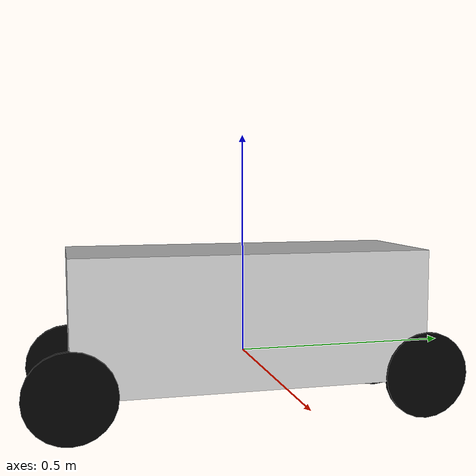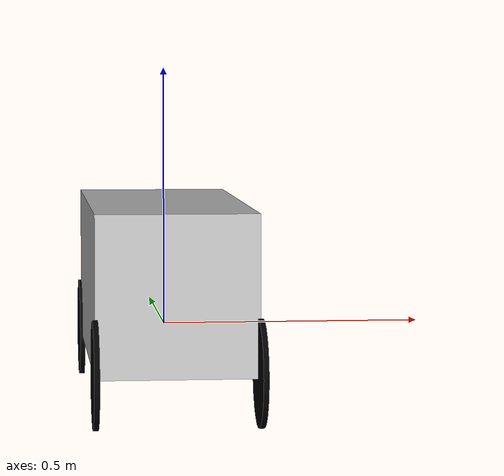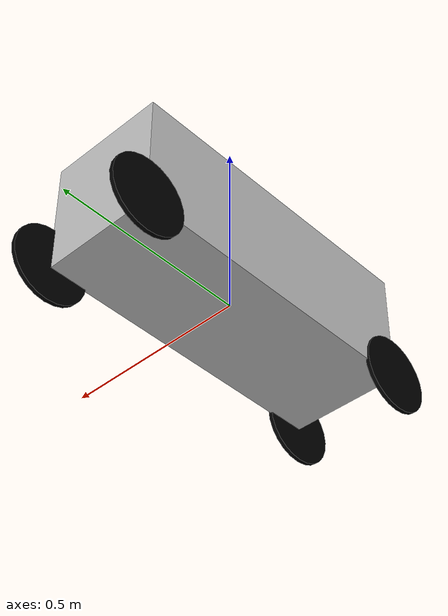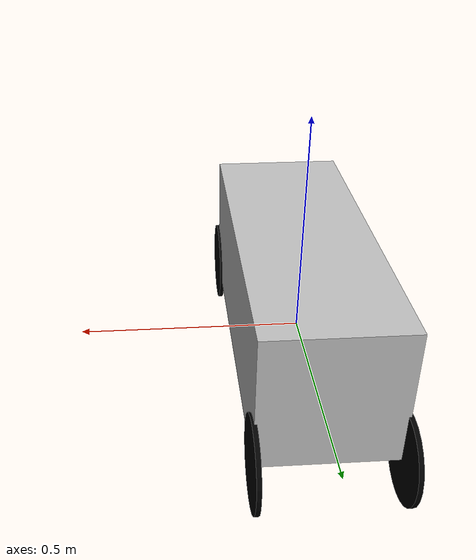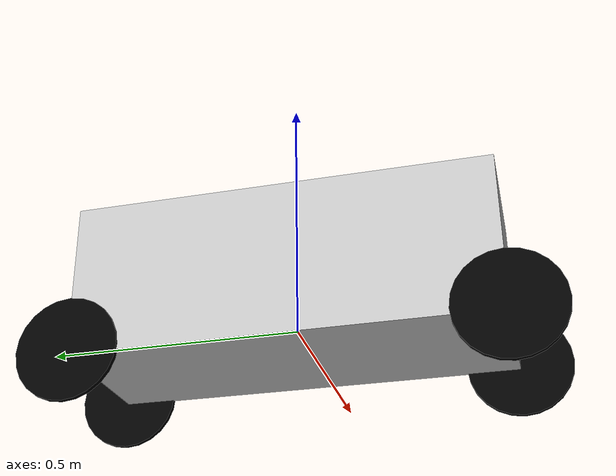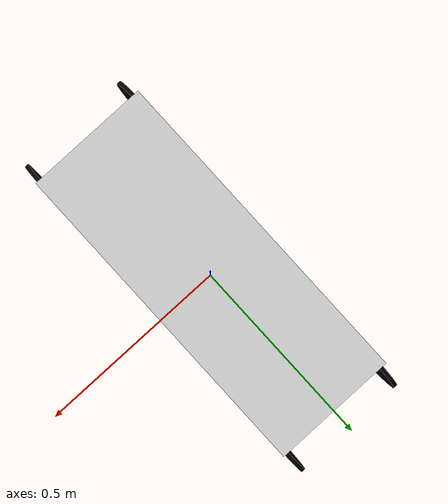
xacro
<?xml version="1.0"?>
<robot name="simple_bot">
<link name="base_footprint"/>
	<material name="rubber">
		<color rgba="0 0 0 1"/>
	</material>
	<material name="steel">
		<color rgba="0.75 0.75 0.75 1"/>
	</material>
	<joint name="base_footprint_joint" type="fixed">
		<parent link="base_footprint" />
		<child link="base_link" />
	</joint>
	<link name="base_link">
		<visual>
		<origin xyz="0 0 0.09" rpy="0 0 0"/>
			<geometry>
				<box size= "0.3 0.8 0.3"/>
			</geometry>
			<material name="steel"/>
		</visual>
		<collision>
			<geometry>
				<box size= "0.3 0.8 0.3"/>
			</geometry>
		</collision>
		<inertial>
			<mass value="1"/>
			<inertia ixx="0.0608333333"  iyy="0.015" izz="0.0608333333" ixy="0.000001" ixz="0.000001" iyz="0.000001"/>
		</inertial>
	</link>
	<link name="wheel_1">
		<visual>
			<geometry>
				<cylinder length="0.01" radius="0.1" />
			</geometry>
			<material name="rubber"/>
			<origin rpy="0 1.57 0" xyz="0 0 0"/>
		</visual>
		<collision>
			<geometry>
				<cylinder length="0.01" radius="0.1"/>
			</geometry>
		</collision>
		<inertial>
			<mass value="1"/>
			<inertia ixx="0.005"  iyy="0.0025" izz="0.0025" ixy="0.000001" ixz="0.000001" iyz="0.000001"/>
		</inertial>
	</link>
	<joint name="Wheel1ToBaseMove" type="continuous">
		<parent link="base_link"/>
		<child link="wheel_1"/>
		<axis xyz="1 0 0"/>
		<origin xyz="0.15 0.4 -0.05"/>
		<limit effort="30.0" velocity="3.0"/>
	</joint>
    	<gazebo reference="wheel_1">
      		<mu1 value="200.0"/>
      		<mu2 value="100.0"/>
      		<kp value="10000000.0" />
      		<kd value="1.0" />
      		<material>Gazebo/Grey</material>
    	</gazebo>
	<link name="wheel_2">
		<visual>
			<geometry>
				<cylinder length="0.01" radius="0.1" />
			</geometry>
			<material name="rubber"/>
			<origin rpy="0 1.57 0" xyz="0 0 0"/>
		</visual>
		<collision>
			<geometry>
				<cylinder length="0.05" radius="0.1"/>
			</geometry>
		</collision>
		<inertial>
			<mass value="1"/>
			<inertia ixx="0.005"  iyy="0.0025" izz="0.0025" ixy="0.000001" ixz="0.000001" iyz="0.000001"/>
		</inertial>
	</link>
	<joint name="Wheel2ToBaseMove" type="continuous">
		<parent link="base_link"/>
		<child link="wheel_2"/>
		<axis xyz="1 0 0"/>
		<origin xyz="-0.15 0.4 -0.05"/>
		<limit effort="30.0" velocity="3.0"/>
	</joint>
    	<gazebo reference="wheel_2">
      		<mu1 value="200.0"/>
      		<mu2 value="100.0"/>
      		<kp value="10000000.0" />
      		<kd value="1.0" />
      		<material>Gazebo/Grey</material>
    	</gazebo>
	<link name="wheel_3">
		<visual>
			<geometry>
				<cylinder length="0.01" radius="0.1" />
			</geometry>
			<material name="rubber"/>
			<origin rpy="0 1.57 0" xyz="0 0 0"/>
		</visual>
		<collision>
			<geometry>
				<cylinder length="0.01" radius="0.1"/>
			</geometry>
		</collision>
		<inertial>
			<mass value="1"/>
			<inertia ixx="0.005"  iyy="0.0025" izz="0.0025" ixy="0.000001" ixz="0.000001" iyz="0.000001"/>
		</inertial>
	</link>
	<joint name="Wheel3ToBaseMove" type="continuous">
		<parent link="base_link"/>
		<child link="wheel_3"/>
		<axis xyz="1 0 0"/>
		<origin xyz="0.15 -0.4 -0.05"/>
		<limit effort="30.0" velocity="3.0"/>
	</joint>
    	<gazebo reference="wheel_3">
      		<mu1 value="200.0"/>
      		<mu2 value="100.0"/>
      		<kp value="10000000.0" />
      		<kd value="1.0" />
      		<material>Gazebo/Grey</material>
    	</gazebo>
	<link name="wheel_4">
		<visual>
			<geometry>
				<cylinder length="0.01" radius="0.1" />
			</geometry>
			<material name="rubber"/>
			<origin rpy="0 1.57 0" xyz="0 0 0"/>
		</visual>
		<collision>
			<geometry>
				<cylinder length="0.01" radius="0.1"/>
			</geometry>
		</collision>
		<inertial>
			<mass value="1"/>
			<inertia ixx="0.005"  iyy="0.0025" izz="0.0025" ixy="0.000001" ixz="0.000001" iyz="0.000001"/>
		</inertial>
	</link>
	<joint name="Wheel4ToBaseMove" type="continuous">
		<parent link="base_link"/>
		<child link="wheel_4"/>
		<axis xyz="1 0 0"/>
		<origin xyz="-0.15 -0.4 -0.05"/>
	</joint>
    	<gazebo reference="wheel_4">
      		<mu1 value="200.0"/>
      		<mu2 value="100.0"/>
      		<kp value="10000000.0" />
      		<kd value="1.0" />
      		<material>Gazebo/Grey</material>
    	</gazebo>
	<gazebo>
  		<plugin name="skid_steer_drive_controller" filename="libgazebo_ros_skid_steer_drive.so">
    		<updateRate>50.0</updateRate>
    		<robotNamespace>/</robotNamespace>
    		<leftFrontJoint>Wheel1ToBaseMove</leftFrontJoint>
    		<rightFrontJoint>Wheel2ToBaseMove</rightFrontJoint>
    		<leftRearJoint>Wheel3ToBaseMove</leftRearJoint>
    		<rightRearJoint>Wheel4ToBaseMove</rightRearJoint>
    		<wheelSeparation>0.4</wheelSeparation>
    		<wheelDiameter>0.2</wheelDiameter>
    		<robotBaseFrame>base_link</robotBaseFrame>
    		<torque>20</torque>
    		<topicName>cmd_vel</topicName>
		<broadcastTF>false</broadcastTF>
  </plugin>
</gazebo>
</robot>
